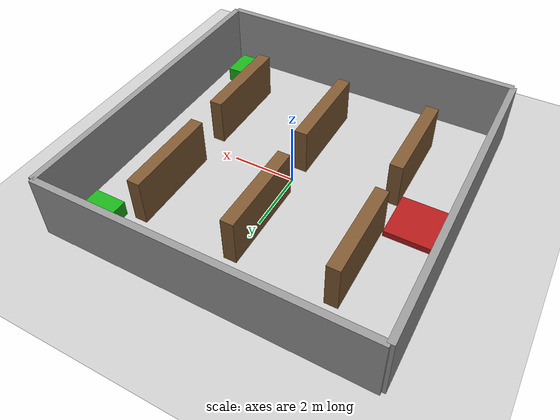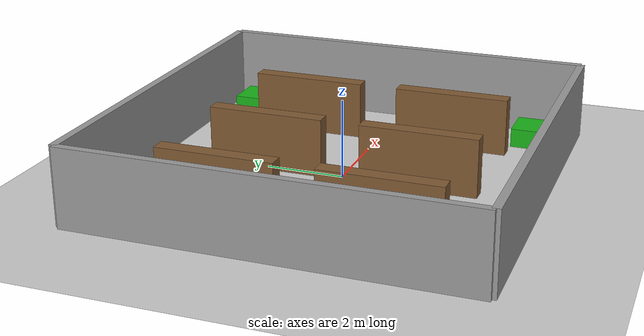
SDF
<?xml version="1.0"?>
<sdf version="1.6">
    <world name="warehouse">

        <!-- ===== PHYSICS ===== -->
        <physics type="ode">
            <real_time_update_rate>1000</real_time_update_rate>
            <max_step_size>0.001</max_step_size>
            <real_time_factor>1</real_time_factor>
        </physics>

        <!-- ===== LIGHTING ===== -->
        <light name="sun" type="directional">
            <cast_shadows>true</cast_shadows>
            <pose>0 0 10 0 0 0</pose>
            <diffuse>0.8 0.8 0.8 1</diffuse>
            <specular>0.2 0.2 0.2 1</specular>
            <direction>-0.5 0.1 -0.9</direction>
        </light>

        <!-- ===== GROUND PLANE ===== -->
        <model name="ground_plane">
            <static>true</static>
            <link name="link">
                <collision name="collision">
                    <geometry><plane><normal>0 0 1</normal></plane></geometry>
                </collision>
                <visual name="visual">
                    <geometry><plane><normal>0 0 1</normal><size>20 20</size></plane></geometry>
                    <material>
                        <ambient>0.8 0.8 0.8 1</ambient>
                        <diffuse>0.8 0.8 0.8 1</diffuse>
                    </material>
                </visual>
            </link>
        </model>

        <!-- ===== OUTER WALLS ===== -->
        <!-- North wall -->
        <model name="wall_north">
            <static>true</static>
            <pose>0 5 1 0 0 0</pose>
            <link name="link">
                <collision name="collision">
                    <geometry><box><size>10 0.2 2</size></box></geometry>
                </collision>
                <visual name="visual">
                    <geometry><box><size>10 0.2 2</size></box></geometry>
                    <material><ambient>0.6 0.6 0.6 1</ambient></material>
                </visual>
            </link>
        </model>

        <!-- South wall -->
        <model name="wall_south">
            <static>true</static>
            <pose>0 -5 1 0 0 0</pose>
            <link name="link">
                <collision name="collision">
                    <geometry><box><size>10 0.2 2</size></box></geometry>
                </collision>
                <visual name="visual">
                    <geometry><box><size>10 0.2 2</size></box></geometry>
                    <material><ambient>0.6 0.6 0.6 1</ambient></material>
                </visual>
            </link>
        </model>

        <!-- East wall -->
        <model name="wall_east">
            <static>true</static>
            <pose>5 0 1 0 0 0</pose>
            <link name="link">
                <collision name="collision">
                    <geometry><box><size>0.2 10 2</size></box></geometry>
                </collision>
                <visual name="visual">
                    <geometry><box><size>0.2 10 2</size></box></geometry>
                    <material><ambient>0.6 0.6 0.6 1</ambient></material>
                </visual>
            </link>
        </model>

        <!-- West wall -->
        <model name="wall_west">
            <static>true</static>
            <pose>-5 0 1 0 0 0</pose>
            <link name="link">
                <collision name="collision">
                    <geometry><box><size>0.2 10 2</size></box></geometry>
                </collision>
                <visual name="visual">
                    <geometry><box><size>0.2 10 2</size></box></geometry>
                    <material><ambient>0.6 0.6 0.6 1</ambient></material>
                </visual>
            </link>
        </model>

        <!-- ===== STORAGE SHELVES (3 aisles) ===== -->
        <!-- Shelf row A (left aisle) -->
        <model name="shelf_A1">
            <static>true</static>
            <pose>-3 2 0.75 0 0 0</pose>
            <link name="link">
                <collision name="collision">
                    <geometry><box><size>0.4 3 1.5</size></box></geometry>
                </collision>
                <visual name="visual">
                    <geometry><box><size>0.4 3 1.5</size></box></geometry>
                    <material><ambient>0.5 0.35 0.2 1</ambient></material>
                </visual>
            </link>
        </model>

        <model name="shelf_A2">
            <static>true</static>
            <pose>-3 -2 0.75 0 0 0</pose>
            <link name="link">
                <collision name="collision">
                    <geometry><box><size>0.4 3 1.5</size></box></geometry>
                </collision>
                <visual name="visual">
                    <geometry><box><size>0.4 3 1.5</size></box></geometry>
                    <material><ambient>0.5 0.35 0.2 1</ambient></material>
                </visual>
            </link>
        </model>

        <!-- Shelf row B (center aisle) -->
        <model name="shelf_B1">
            <static>true</static>
            <pose>0 2 0.75 0 0 0</pose>
            <link name="link">
                <collision name="collision">
                    <geometry><box><size>0.4 3 1.5</size></box></geometry>
                </collision>
                <visual name="visual">
                    <geometry><box><size>0.4 3 1.5</size></box></geometry>
                    <material><ambient>0.5 0.35 0.2 1</ambient></material>
                </visual>
            </link>
        </model>

        <model name="shelf_B2">
            <static>true</static>
            <pose>0 -2 0.75 0 0 0</pose>
            <link name="link">
                <collision name="collision">
                    <geometry><box><size>0.4 3 1.5</size></box></geometry>
                </collision>
                <visual name="visual">
                    <geometry><box><size>0.4 3 1.5</size></box></geometry>
                    <material><ambient>0.5 0.35 0.2 1</ambient></material>
                </visual>
            </link>
        </model>

        <!-- Shelf row C (right aisle) -->
        <model name="shelf_C1">
            <static>true</static>
            <pose>3 2 0.75 0 0 0</pose>
            <link name="link">
                <collision name="collision">
                    <geometry><box><size>0.4 3 1.5</size></box></geometry>
                </collision>
                <visual name="visual">
                    <geometry><box><size>0.4 3 1.5</size></box></geometry>
                    <material><ambient>0.5 0.35 0.2 1</ambient></material>
                </visual>
            </link>
        </model>

        <model name="shelf_C2">
            <static>true</static>
            <pose>3 -2 0.75 0 0 0</pose>
            <link name="link">
                <collision name="collision">
                    <geometry><box><size>0.4 3 1.5</size></box></geometry>
                </collision>
                <visual name="visual">
                    <geometry><box><size>0.4 3 1.5</size></box></geometry>
                    <material><ambient>0.5 0.35 0.2 1</ambient></material>
                </visual>
            </link>
        </model>

        <!-- ===== PICKUP STATIONS ===== -->
        <model name="pickup_station_1">
            <static>true</static>
            <pose>4 4 0.25 0 0 0</pose>
            <link name="link">
                <collision name="collision">
                    <geometry><box><size>1 1 0.5</size></box></geometry>
                </collision>
                <visual name="visual">
                    <geometry><box><size>1 1 0.5</size></box></geometry>
                    <material><ambient>0.1 0.7 0.1 1</ambient></material>
                </visual>
            </link>
        </model>

        <model name="pickup_station_2">
            <static>true</static>
            <pose>4 -4 0.25 0 0 0</pose>
            <link name="link">
                <collision name="collision">
                    <geometry><box><size>1 1 0.5</size></box></geometry>
                </collision>
                <visual name="visual">
                    <geometry><box><size>1 1 0.5</size></box></geometry>
                    <material><ambient>0.1 0.7 0.1 1</ambient></material>
                </visual>
            </link>
        </model>

        <!-- ===== DROPOFF ZONE ===== -->
        <model name="dropoff_zone">
            <static>true</static>
            <pose>-4 0 0.1 0 0 0</pose>
            <link name="link">
                <collision name="collision">
                    <geometry><box><size>1.5 1.5 0.2</size></box></geometry>
                </collision>
                <visual name="visual">
                    <geometry><box><size>1.5 1.5 0.2</size></box></geometry>
                    <material><ambient>0.7 0.1 0.1 1</ambient></material>
                </visual>
            </link>
        </model>

    </world>
</sdf>
